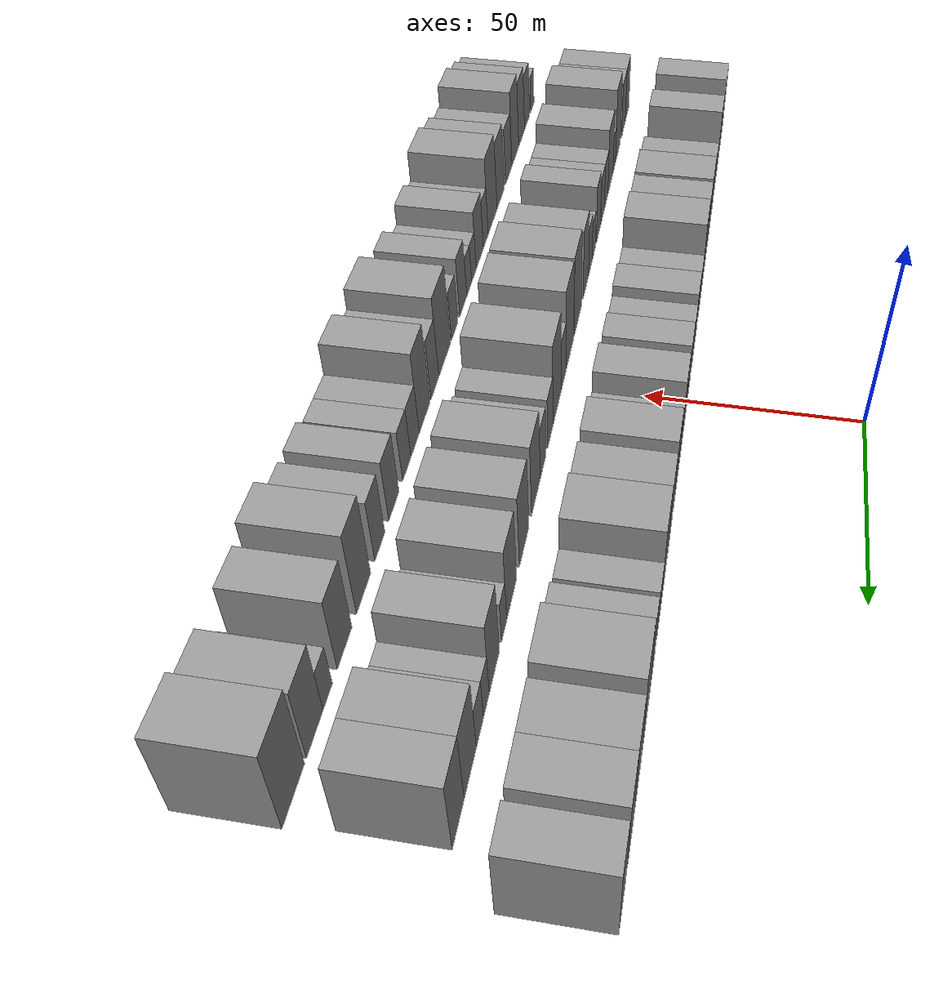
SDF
<sdf version="1.6">
 <world name="default">
  <model name="building_25">
   <static>1</static>
   <pose>50.0000 -112.3726 0 0.000000 0.000000 0.000000</pose>
   <link name="link">
    <pose>0 0 10.50 0 0 0</pose>
    <collision name="collision"><geometry><box><size>20.0000 9.3259 21.0000</size></box></geometry></collision>
    <visual name="visual">
     <cast_shadows>0</cast_shadows>
     <geometry><box><size>20.0000 9.3259 21.0000</size></box></geometry>
     <material>
      <script>
       <uri>model://grey_wall/materials/scripts</uri>
       <uri>model://grey_wall/materials/textures</uri>
       <name>vrc/grey_wall</name>
      </script>
     </material>
    </visual>
   </link>
  </model>
  <model name="building_26">
   <static>1</static>
   <pose>50.0000 -105.0843 0 0.000000 0.000000 0.000000</pose>
   <link name="link">
    <pose>0 0 6.00 0 0 0</pose>
    <collision name="collision"><geometry><box><size>20.0000 5.2507 12.0000</size></box></geometry></collision>
    <visual name="visual">
     <cast_shadows>0</cast_shadows>
     <geometry><box><size>20.0000 5.2507 12.0000</size></box></geometry>
     <material>
      <script>
       <uri>model://grey_wall/materials/scripts</uri>
       <uri>model://grey_wall/materials/textures</uri>
       <name>vrc/grey_wall</name>
      </script>
     </material>
    </visual>
   </link>
  </model>
  <model name="building_27">
   <static>1</static>
   <pose>50.0000 -95.0004 0 0.000000 0.000000 0.000000</pose>
   <link name="link">
    <pose>0 0 10.50 0 0 0</pose>
    <collision name="collision"><geometry><box><size>20.0000 8.9172 21.0000</size></box></geometry></collision>
    <visual name="visual">
     <cast_shadows>0</cast_shadows>
     <geometry><box><size>20.0000 8.9172 21.0000</size></box></geometry>
     <material>
      <script>
       <uri>model://grey_wall/materials/scripts</uri>
       <uri>model://grey_wall/materials/textures</uri>
       <name>vrc/grey_wall</name>
      </script>
     </material>
    </visual>
   </link>
  </model>
  <model name="building_28">
   <static>1</static>
   <pose>50.0000 -84.7550 0 0.000000 0.000000 0.000000</pose>
   <link name="link">
    <pose>0 0 6.00 0 0 0</pose>
    <collision name="collision"><geometry><box><size>20.0000 5.5736 12.0000</size></box></geometry></collision>
    <visual name="visual">
     <cast_shadows>0</cast_shadows>
     <geometry><box><size>20.0000 5.5736 12.0000</size></box></geometry>
     <material>
      <script>
       <uri>model://grey_wall/materials/scripts</uri>
       <uri>model://grey_wall/materials/textures</uri>
       <name>vrc/grey_wall</name>
      </script>
     </material>
    </visual>
   </link>
  </model>
  <model name="building_29">
   <static>1</static>
   <pose>50.0000 -76.0003 0 0.000000 0.000000 0.000000</pose>
   <link name="link">
    <pose>0 0 9.00 0 0 0</pose>
    <collision name="collision"><geometry><box><size>20.0000 7.9358 18.0000</size></box></geometry></collision>
    <visual name="visual">
     <cast_shadows>0</cast_shadows>
     <geometry><box><size>20.0000 7.9358 18.0000</size></box></geometry>
     <material>
      <script>
       <uri>model://grey_wall/materials/scripts</uri>
       <uri>model://grey_wall/materials/textures</uri>
       <name>vrc/grey_wall</name>
      </script>
     </material>
    </visual>
   </link>
  </model>
  <model name="building_30">
   <static>1</static>
   <pose>50.0000 -63.7899 0 0.000000 0.000000 0.000000</pose>
   <link name="link">
    <pose>0 0 10.50 0 0 0</pose>
    <collision name="collision"><geometry><box><size>20.0000 10.4850 21.0000</size></box></geometry></collision>
    <visual name="visual">
     <cast_shadows>0</cast_shadows>
     <geometry><box><size>20.0000 10.4850 21.0000</size></box></geometry>
     <material>
      <script>
       <uri>model://grey_wall/materials/scripts</uri>
       <uri>model://grey_wall/materials/textures</uri>
       <name>vrc/grey_wall</name>
      </script>
     </material>
    </visual>
   </link>
  </model>
  <model name="building_31">
   <static>1</static>
   <pose>50.0000 -53.2239 0 0.000000 0.000000 0.000000</pose>
   <link name="link">
    <pose>0 0 10.50 0 0 0</pose>
    <collision name="collision"><geometry><box><size>20.0000 8.6469 21.0000</size></box></geometry></collision>
    <visual name="visual">
     <cast_shadows>0</cast_shadows>
     <geometry><box><size>20.0000 8.6469 21.0000</size></box></geometry>
     <material>
      <script>
       <uri>model://grey_wall/materials/scripts</uri>
       <uri>model://grey_wall/materials/textures</uri>
       <name>vrc/grey_wall</name>
      </script>
     </material>
    </visual>
   </link>
  </model>
  <model name="building_32">
   <static>1</static>
   <pose>50.0000 -40.5641 0 0.000000 0.000000 0.000000</pose>
   <link name="link">
    <pose>0 0 12.00 0 0 0</pose>
    <collision name="collision"><geometry><box><size>20.0000 10.6726 24.0000</size></box></geometry></collision>
    <visual name="visual">
     <cast_shadows>0</cast_shadows>
     <geometry><box><size>20.0000 10.6726 24.0000</size></box></geometry>
     <material>
      <script>
       <uri>model://grey_wall/materials/scripts</uri>
       <uri>model://grey_wall/materials/textures</uri>
       <name>vrc/grey_wall</name>
      </script>
     </material>
    </visual>
   </link>
  </model>
  <model name="building_33">
   <static>1</static>
   <pose>50.0000 -31.6713 0 0.000000 0.000000 0.000000</pose>
   <link name="link">
    <pose>0 0 7.50 0 0 0</pose>
    <collision name="collision"><geometry><box><size>20.0000 7.1129 15.0000</size></box></geometry></collision>
    <visual name="visual">
     <cast_shadows>0</cast_shadows>
     <geometry><box><size>20.0000 7.1129 15.0000</size></box></geometry>
     <material>
      <script>
       <uri>model://grey_wall/materials/scripts</uri>
       <uri>model://grey_wall/materials/textures</uri>
       <name>vrc/grey_wall</name>
      </script>
     </material>
    </visual>
   </link>
  </model>
  <model name="building_34">
   <static>1</static>
   <pose>50.0000 -20.8521 0 0.000000 0.000000 0.000000</pose>
   <link name="link">
    <pose>0 0 9.00 0 0 0</pose>
    <collision name="collision"><geometry><box><size>20.0000 8.5255 18.0000</size></box></geometry></collision>
    <visual name="visual">
     <cast_shadows>0</cast_shadows>
     <geometry><box><size>20.0000 8.5255 18.0000</size></box></geometry>
     <material>
      <script>
       <uri>model://grey_wall/materials/scripts</uri>
       <uri>model://grey_wall/materials/textures</uri>
       <name>vrc/grey_wall</name>
      </script>
     </material>
    </visual>
   </link>
  </model>
  <model name="building_35">
   <static>1</static>
   <pose>50.0000 -13.3748 0 0.000000 0.000000 0.000000</pose>
   <link name="link">
    <pose>0 0 7.50 0 0 0</pose>
    <collision name="collision"><geometry><box><size>20.0000 6.4291 15.0000</size></box></geometry></collision>
    <visual name="visual">
     <cast_shadows>0</cast_shadows>
     <geometry><box><size>20.0000 6.4291 15.0000</size></box></geometry>
     <material>
      <script>
       <uri>model://grey_wall/materials/scripts</uri>
       <uri>model://grey_wall/materials/textures</uri>
       <name>vrc/grey_wall</name>
      </script>
     </material>
    </visual>
   </link>
  </model>
  <model name="building_36">
   <static>1</static>
   <pose>50.0000 -3.1231 0 0.000000 0.000000 0.000000</pose>
   <link name="link">
    <pose>0 0 9.00 0 0 0</pose>
    <collision name="collision"><geometry><box><size>20.0000 8.0743 18.0000</size></box></geometry></collision>
    <visual name="visual">
     <cast_shadows>0</cast_shadows>
     <geometry><box><size>20.0000 8.0743 18.0000</size></box></geometry>
     <material>
      <script>
       <uri>model://grey_wall/materials/scripts</uri>
       <uri>model://grey_wall/materials/textures</uri>
       <name>vrc/grey_wall</name>
      </script>
     </material>
    </visual>
   </link>
  </model>
  <model name="building_37">
   <static>1</static>
   <pose>50.0000 3.6202 0 0.000000 0.000000 0.000000</pose>
   <link name="link">
    <pose>0 0 6.00 0 0 0</pose>
    <collision name="collision"><geometry><box><size>20.0000 5.4123 12.0000</size></box></geometry></collision>
    <visual name="visual">
     <cast_shadows>0</cast_shadows>
     <geometry><box><size>20.0000 5.4123 12.0000</size></box></geometry>
     <material>
      <script>
       <uri>model://grey_wall/materials/scripts</uri>
       <uri>model://grey_wall/materials/textures</uri>
       <name>vrc/grey_wall</name>
      </script>
     </material>
    </visual>
   </link>
  </model>
  <model name="building_38">
   <static>1</static>
   <pose>50.0000 10.9065 0 0.000000 0.000000 0.000000</pose>
   <link name="link">
    <pose>0 0 10.50 0 0 0</pose>
    <collision name="collision"><geometry><box><size>20.0000 9.1602 21.0000</size></box></geometry></collision>
    <visual name="visual">
     <cast_shadows>0</cast_shadows>
     <geometry><box><size>20.0000 9.1602 21.0000</size></box></geometry>
     <material>
      <script>
       <uri>model://grey_wall/materials/scripts</uri>
       <uri>model://grey_wall/materials/textures</uri>
       <name>vrc/grey_wall</name>
      </script>
     </material>
    </visual>
   </link>
  </model>
  <model name="building_39">
   <static>1</static>
   <pose>50.0000 19.1723 0 0.000000 0.000000 0.000000</pose>
   <link name="link">
    <pose>0 0 7.50 0 0 0</pose>
    <collision name="collision"><geometry><box><size>20.0000 7.3716 15.0000</size></box></geometry></collision>
    <visual name="visual">
     <cast_shadows>0</cast_shadows>
     <geometry><box><size>20.0000 7.3716 15.0000</size></box></geometry>
     <material>
      <script>
       <uri>model://grey_wall/materials/scripts</uri>
       <uri>model://grey_wall/materials/textures</uri>
       <name>vrc/grey_wall</name>
      </script>
     </material>
    </visual>
   </link>
  </model>
  <model name="building_40">
   <static>1</static>
   <pose>50.0000 27.6833 0 0.000000 0.000000 0.000000</pose>
   <link name="link">
    <pose>0 0 10.50 0 0 0</pose>
    <collision name="collision"><geometry><box><size>20.0000 9.6505 21.0000</size></box></geometry></collision>
    <visual name="visual">
     <cast_shadows>0</cast_shadows>
     <geometry><box><size>20.0000 9.6505 21.0000</size></box></geometry>
     <material>
      <script>
       <uri>model://grey_wall/materials/scripts</uri>
       <uri>model://grey_wall/materials/textures</uri>
       <name>vrc/grey_wall</name>
      </script>
     </material>
    </visual>
   </link>
  </model>
  <model name="building_41">
   <static>1</static>
   <pose>50.0000 40.5229 0 0.000000 0.000000 0.000000</pose>
   <link name="link">
    <pose>0 0 10.50 0 0 0</pose>
    <collision name="collision"><geometry><box><size>20.0000 10.0286 21.0000</size></box></geometry></collision>
    <visual name="visual">
     <cast_shadows>0</cast_shadows>
     <geometry><box><size>20.0000 10.0286 21.0000</size></box></geometry>
     <material>
      <script>
       <uri>model://grey_wall/materials/scripts</uri>
       <uri>model://grey_wall/materials/textures</uri>
       <name>vrc/grey_wall</name>
      </script>
     </material>
    </visual>
   </link>
  </model>
  <model name="building_42">
   <static>1</static>
   <pose>50.0000 52.1175 0 0.000000 0.000000 0.000000</pose>
   <link name="link">
    <pose>0 0 12.00 0 0 0</pose>
    <collision name="collision"><geometry><box><size>20.0000 11.1605 24.0000</size></box></geometry></collision>
    <visual name="visual">
     <cast_shadows>0</cast_shadows>
     <geometry><box><size>20.0000 11.1605 24.0000</size></box></geometry>
     <material>
      <script>
       <uri>model://grey_wall/materials/scripts</uri>
       <uri>model://grey_wall/materials/textures</uri>
       <name>vrc/grey_wall</name>
      </script>
     </material>
    </visual>
   </link>
  </model>
  <model name="building_43">
   <static>1</static>
   <pose>50.0000 61.1366 0 0.000000 0.000000 0.000000</pose>
   <link name="link">
    <pose>0 0 7.50 0 0 0</pose>
    <collision name="collision"><geometry><box><size>20.0000 6.8779 15.0000</size></box></geometry></collision>
    <visual name="visual">
     <cast_shadows>0</cast_shadows>
     <geometry><box><size>20.0000 6.8779 15.0000</size></box></geometry>
     <material>
      <script>
       <uri>model://grey_wall/materials/scripts</uri>
       <uri>model://grey_wall/materials/textures</uri>
       <name>vrc/grey_wall</name>
      </script>
     </material>
    </visual>
   </link>
  </model>
  <model name="building_44">
   <static>1</static>
   <pose>50.0000 71.9413 0 0.000000 0.000000 0.000000</pose>
   <link name="link">
    <pose>0 0 9.00 0 0 0</pose>
    <collision name="collision"><geometry><box><size>20.0000 8.7314 18.0000</size></box></geometry></collision>
    <visual name="visual">
     <cast_shadows>0</cast_shadows>
     <geometry><box><size>20.0000 8.7314 18.0000</size></box></geometry>
     <material>
      <script>
       <uri>model://grey_wall/materials/scripts</uri>
       <uri>model://grey_wall/materials/textures</uri>
       <name>vrc/grey_wall</name>
      </script>
     </material>
    </visual>
   </link>
  </model>
  <model name="building_45">
   <static>1</static>
   <pose>50.0000 82.3066 0 0.000000 0.000000 0.000000</pose>
   <link name="link">
    <pose>0 0 12.00 0 0 0</pose>
    <collision name="collision"><geometry><box><size>20.0000 11.9993 24.0000</size></box></geometry></collision>
    <visual name="visual">
     <cast_shadows>0</cast_shadows>
     <geometry><box><size>20.0000 11.9993 24.0000</size></box></geometry>
     <material>
      <script>
       <uri>model://grey_wall/materials/scripts</uri>
       <uri>model://grey_wall/materials/textures</uri>
       <name>vrc/grey_wall</name>
      </script>
     </material>
    </visual>
   </link>
  </model>
  <model name="building_46">
   <static>1</static>
   <pose>50.0000 94.3098 0 0.000000 0.000000 0.000000</pose>
   <link name="link">
    <pose>0 0 10.50 0 0 0</pose>
    <collision name="collision"><geometry><box><size>20.0000 10.0070 21.0000</size></box></geometry></collision>
    <visual name="visual">
     <cast_shadows>0</cast_shadows>
     <geometry><box><size>20.0000 10.0070 21.0000</size></box></geometry>
     <material>
      <script>
       <uri>model://grey_wall/materials/scripts</uri>
       <uri>model://grey_wall/materials/textures</uri>
       <name>vrc/grey_wall</name>
      </script>
     </material>
    </visual>
   </link>
  </model>
  <model name="building_47">
   <static>1</static>
   <pose>50.0000 104.0893 0 0.000000 0.000000 0.000000</pose>
   <link name="link">
    <pose>0 0 10.50 0 0 0</pose>
    <collision name="collision"><geometry><box><size>20.0000 9.5521 21.0000</size></box></geometry></collision>
    <visual name="visual">
     <cast_shadows>0</cast_shadows>
     <geometry><box><size>20.0000 9.5521 21.0000</size></box></geometry>
     <material>
      <script>
       <uri>model://grey_wall/materials/scripts</uri>
       <uri>model://grey_wall/materials/textures</uri>
       <name>vrc/grey_wall</name>
      </script>
     </material>
    </visual>
   </link>
  </model>
  <model name="building_48">
   <static>1</static>
   <pose>50.0000 115.2018 0 0.000000 0.000000 0.000000</pose>
   <link name="link">
    <pose>0 0 10.50 0 0 0</pose>
    <collision name="collision"><geometry><box><size>20.0000 8.6728 21.0000</size></box></geometry></collision>
    <visual name="visual">
     <cast_shadows>0</cast_shadows>
     <geometry><box><size>20.0000 8.6728 21.0000</size></box></geometry>
     <material>
      <script>
       <uri>model://grey_wall/materials/scripts</uri>
       <uri>model://grey_wall/materials/textures</uri>
       <name>vrc/grey_wall</name>
      </script>
     </material>
    </visual>
   </link>
  </model>
  <model name="building_99">
   <static>1</static>
   <pose>79.0000 -118.6363 0 0.000000 0.000000 0.000000</pose>
   <link name="link">
    <pose>0 0 9.00 0 0 0</pose>
    <collision name="collision"><geometry><box><size>20.0000 8.7768 18.0000</size></box></geometry></collision>
    <visual name="visual">
     <cast_shadows>0</cast_shadows>
     <geometry><box><size>20.0000 8.7768 18.0000</size></box></geometry>
     <material>
      <script>
       <uri>model://grey_wall/materials/scripts</uri>
       <uri>model://grey_wall/materials/textures</uri>
       <name>vrc/grey_wall</name>
      </script>
     </material>
    </visual>
   </link>
  </model>
  <model name="building_100">
   <static>1</static>
   <pose>79.0000 -109.9008 0 0.000000 0.000000 0.000000</pose>
   <link name="link">
    <pose>0 0 9.00 0 0 0</pose>
    <collision name="collision"><geometry><box><size>20.0000 8.6943 18.0000</size></box></geometry></collision>
    <visual name="visual">
     <cast_shadows>0</cast_shadows>
     <geometry><box><size>20.0000 8.6943 18.0000</size></box></geometry>
     <material>
      <script>
       <uri>model://grey_wall/materials/scripts</uri>
       <uri>model://grey_wall/materials/textures</uri>
       <name>vrc/grey_wall</name>
      </script>
     </material>
    </visual>
   </link>
  </model>
  <model name="building_101">
   <static>1</static>
   <pose>79.0000 -97.3235 0 0.000000 0.000000 0.000000</pose>
   <link name="link">
    <pose>0 0 12.00 0 0 0</pose>
    <collision name="collision"><geometry><box><size>20.0000 10.4603 24.0000</size></box></geometry></collision>
    <visual name="visual">
     <cast_shadows>0</cast_shadows>
     <geometry><box><size>20.0000 10.4603 24.0000</size></box></geometry>
     <material>
      <script>
       <uri>model://grey_wall/materials/scripts</uri>
       <uri>model://grey_wall/materials/textures</uri>
       <name>vrc/grey_wall</name>
      </script>
     </material>
    </visual>
   </link>
  </model>
  <model name="building_102">
   <static>1</static>
   <pose>79.0000 -89.5181 0 0.000000 0.000000 0.000000</pose>
   <link name="link">
    <pose>0 0 6.00 0 0 0</pose>
    <collision name="collision"><geometry><box><size>20.0000 5.1506 12.0000</size></box></geometry></collision>
    <visual name="visual">
     <cast_shadows>0</cast_shadows>
     <geometry><box><size>20.0000 5.1506 12.0000</size></box></geometry>
     <material>
      <script>
       <uri>model://grey_wall/materials/scripts</uri>
       <uri>model://grey_wall/materials/textures</uri>
       <name>vrc/grey_wall</name>
      </script>
     </material>
    </visual>
   </link>
  </model>
  <model name="building_103">
   <static>1</static>
   <pose>79.0000 -81.7245 0 0.000000 0.000000 0.000000</pose>
   <link name="link">
    <pose>0 0 10.50 0 0 0</pose>
    <collision name="collision"><geometry><box><size>20.0000 10.4366 21.0000</size></box></geometry></collision>
    <visual name="visual">
     <cast_shadows>0</cast_shadows>
     <geometry><box><size>20.0000 10.4366 21.0000</size></box></geometry>
     <material>
      <script>
       <uri>model://grey_wall/materials/scripts</uri>
       <uri>model://grey_wall/materials/textures</uri>
       <name>vrc/grey_wall</name>
      </script>
     </material>
    </visual>
   </link>
  </model>
  <model name="building_104">
   <static>1</static>
   <pose>79.0000 -73.0098 0 0.000000 0.000000 0.000000</pose>
   <link name="link">
    <pose>0 0 7.50 0 0 0</pose>
    <collision name="collision"><geometry><box><size>20.0000 6.9927 15.0000</size></box></geometry></collision>
    <visual name="visual">
     <cast_shadows>0</cast_shadows>
     <geometry><box><size>20.0000 6.9927 15.0000</size></box></geometry>
     <material>
      <script>
       <uri>model://grey_wall/materials/scripts</uri>
       <uri>model://grey_wall/materials/textures</uri>
       <name>vrc/grey_wall</name>
      </script>
     </material>
    </visual>
   </link>
  </model>
  <model name="building_105">
   <static>1</static>
   <pose>79.0000 -66.1398 0 0.000000 0.000000 0.000000</pose>
   <link name="link">
    <pose>0 0 7.50 0 0 0</pose>
    <collision name="collision"><geometry><box><size>20.0000 6.7475 15.0000</size></box></geometry></collision>
    <visual name="visual">
     <cast_shadows>0</cast_shadows>
     <geometry><box><size>20.0000 6.7475 15.0000</size></box></geometry>
     <material>
      <script>
       <uri>model://grey_wall/materials/scripts</uri>
       <uri>model://grey_wall/materials/textures</uri>
       <name>vrc/grey_wall</name>
      </script>
     </material>
    </visual>
   </link>
  </model>
  <model name="building_106">
   <static>1</static>
   <pose>79.0000 -58.1463 0 0.000000 0.000000 0.000000</pose>
   <link name="link">
    <pose>0 0 9.00 0 0 0</pose>
    <collision name="collision"><geometry><box><size>20.0000 7.2394 18.0000</size></box></geometry></collision>
    <visual name="visual">
     <cast_shadows>0</cast_shadows>
     <geometry><box><size>20.0000 7.2394 18.0000</size></box></geometry>
     <material>
      <script>
       <uri>model://grey_wall/materials/scripts</uri>
       <uri>model://grey_wall/materials/textures</uri>
       <name>vrc/grey_wall</name>
      </script>
     </material>
    </visual>
   </link>
  </model>
  <model name="building_107">
   <static>1</static>
   <pose>79.0000 -49.7408 0 0.000000 0.000000 0.000000</pose>
   <link name="link">
    <pose>0 0 6.00 0 0 0</pose>
    <collision name="collision"><geometry><box><size>20.0000 5.5715 12.0000</size></box></geometry></collision>
    <visual name="visual">
     <cast_shadows>0</cast_shadows>
     <geometry><box><size>20.0000 5.5715 12.0000</size></box></geometry>
     <material>
      <script>
       <uri>model://grey_wall/materials/scripts</uri>
       <uri>model://grey_wall/materials/textures</uri>
       <name>vrc/grey_wall</name>
      </script>
     </material>
    </visual>
   </link>
  </model>
  <model name="building_108">
   <static>1</static>
   <pose>79.0000 -43.7223 0 0.000000 0.000000 0.000000</pose>
   <link name="link">
    <pose>0 0 7.50 0 0 0</pose>
    <collision name="collision"><geometry><box><size>20.0000 6.4656 15.0000</size></box></geometry></collision>
    <visual name="visual">
     <cast_shadows>0</cast_shadows>
     <geometry><box><size>20.0000 6.4656 15.0000</size></box></geometry>
     <material>
      <script>
       <uri>model://grey_wall/materials/scripts</uri>
       <uri>model://grey_wall/materials/textures</uri>
       <name>vrc/grey_wall</name>
      </script>
     </material>
    </visual>
   </link>
  </model>
  <model name="building_109">
   <static>1</static>
   <pose>79.0000 -36.0960 0 0.000000 0.000000 0.000000</pose>
   <link name="link">
    <pose>0 0 10.50 0 0 0</pose>
    <collision name="collision"><geometry><box><size>20.0000 8.7871 21.0000</size></box></geometry></collision>
    <visual name="visual">
     <cast_shadows>0</cast_shadows>
     <geometry><box><size>20.0000 8.7871 21.0000</size></box></geometry>
     <material>
      <script>
       <uri>model://grey_wall/materials/scripts</uri>
       <uri>model://grey_wall/materials/textures</uri>
       <name>vrc/grey_wall</name>
      </script>
     </material>
    </visual>
   </link>
  </model>
  <model name="building_110">
   <static>1</static>
   <pose>79.0000 -23.1301 0 0.000000 0.000000 0.000000</pose>
   <link name="link">
    <pose>0 0 12.00 0 0 0</pose>
    <collision name="collision"><geometry><box><size>20.0000 11.1446 24.0000</size></box></geometry></collision>
    <visual name="visual">
     <cast_shadows>0</cast_shadows>
     <geometry><box><size>20.0000 11.1446 24.0000</size></box></geometry>
     <material>
      <script>
       <uri>model://grey_wall/materials/scripts</uri>
       <uri>model://grey_wall/materials/textures</uri>
       <name>vrc/grey_wall</name>
      </script>
     </material>
    </visual>
   </link>
  </model>
  <model name="building_111">
   <static>1</static>
   <pose>79.0000 -11.0410 0 0.000000 0.000000 0.000000</pose>
   <link name="link">
    <pose>0 0 12.00 0 0 0</pose>
    <collision name="collision"><geometry><box><size>20.0000 11.0335 24.0000</size></box></geometry></collision>
    <visual name="visual">
     <cast_shadows>0</cast_shadows>
     <geometry><box><size>20.0000 11.0335 24.0000</size></box></geometry>
     <material>
      <script>
       <uri>model://grey_wall/materials/scripts</uri>
       <uri>model://grey_wall/materials/textures</uri>
       <name>vrc/grey_wall</name>
      </script>
     </material>
    </visual>
   </link>
  </model>
  <model name="building_112">
   <static>1</static>
   <pose>79.0000 -2.1463 0 0.000000 0.000000 0.000000</pose>
   <link name="link">
    <pose>0 0 7.50 0 0 0</pose>
    <collision name="collision"><geometry><box><size>20.0000 6.7559 15.0000</size></box></geometry></collision>
    <visual name="visual">
     <cast_shadows>0</cast_shadows>
     <geometry><box><size>20.0000 6.7559 15.0000</size></box></geometry>
     <material>
      <script>
       <uri>model://grey_wall/materials/scripts</uri>
       <uri>model://grey_wall/materials/textures</uri>
       <name>vrc/grey_wall</name>
      </script>
     </material>
    </visual>
   </link>
  </model>
  <model name="building_113">
   <static>1</static>
   <pose>79.0000 6.8557 0 0.000000 0.000000 0.000000</pose>
   <link name="link">
    <pose>0 0 12.00 0 0 0</pose>
    <collision name="collision"><geometry><box><size>20.0000 11.2482 24.0000</size></box></geometry></collision>
    <visual name="visual">
     <cast_shadows>0</cast_shadows>
     <geometry><box><size>20.0000 11.2482 24.0000</size></box></geometry>
     <material>
      <script>
       <uri>model://grey_wall/materials/scripts</uri>
       <uri>model://grey_wall/materials/textures</uri>
       <name>vrc/grey_wall</name>
      </script>
     </material>
    </visual>
   </link>
  </model>
  <model name="building_114">
   <static>1</static>
   <pose>79.0000 16.0482 0 0.000000 0.000000 0.000000</pose>
   <link name="link">
    <pose>0 0 7.50 0 0 0</pose>
    <collision name="collision"><geometry><box><size>20.0000 7.1368 15.0000</size></box></geometry></collision>
    <visual name="visual">
     <cast_shadows>0</cast_shadows>
     <geometry><box><size>20.0000 7.1368 15.0000</size></box></geometry>
     <material>
      <script>
       <uri>model://grey_wall/materials/scripts</uri>
       <uri>model://grey_wall/materials/textures</uri>
       <name>vrc/grey_wall</name>
      </script>
     </material>
    </visual>
   </link>
  </model>
  <model name="building_115">
   <static>1</static>
   <pose>79.0000 25.1755 0 0.000000 0.000000 0.000000</pose>
   <link name="link">
    <pose>0 0 7.50 0 0 0</pose>
    <collision name="collision"><geometry><box><size>20.0000 7.1177 15.0000</size></box></geometry></collision>
    <visual name="visual">
     <cast_shadows>0</cast_shadows>
     <geometry><box><size>20.0000 7.1177 15.0000</size></box></geometry>
     <material>
      <script>
       <uri>model://grey_wall/materials/scripts</uri>
       <uri>model://grey_wall/materials/textures</uri>
       <name>vrc/grey_wall</name>
      </script>
     </material>
    </visual>
   </link>
  </model>
  <model name="building_116">
   <static>1</static>
   <pose>79.0000 33.8125 0 0.000000 0.000000 0.000000</pose>
   <link name="link">
    <pose>0 0 10.50 0 0 0</pose>
    <collision name="collision"><geometry><box><size>20.0000 10.1564 21.0000</size></box></geometry></collision>
    <visual name="visual">
     <cast_shadows>0</cast_shadows>
     <geometry><box><size>20.0000 10.1564 21.0000</size></box></geometry>
     <material>
      <script>
       <uri>model://grey_wall/materials/scripts</uri>
       <uri>model://grey_wall/materials/textures</uri>
       <name>vrc/grey_wall</name>
      </script>
     </material>
    </visual>
   </link>
  </model>
  <model name="building_117">
   <static>1</static>
   <pose>79.0000 47.0017 0 0.000000 0.000000 0.000000</pose>
   <link name="link">
    <pose>0 0 10.50 0 0 0</pose>
    <collision name="collision"><geometry><box><size>20.0000 10.2220 21.0000</size></box></geometry></collision>
    <visual name="visual">
     <cast_shadows>0</cast_shadows>
     <geometry><box><size>20.0000 10.2220 21.0000</size></box></geometry>
     <material>
      <script>
       <uri>model://grey_wall/materials/scripts</uri>
       <uri>model://grey_wall/materials/textures</uri>
       <name>vrc/grey_wall</name>
      </script>
     </material>
    </visual>
   </link>
  </model>
  <model name="building_118">
   <static>1</static>
   <pose>79.0000 60.0276 0 0.000000 0.000000 0.000000</pose>
   <link name="link">
    <pose>0 0 10.50 0 0 0</pose>
    <collision name="collision"><geometry><box><size>20.0000 9.8298 21.0000</size></box></geometry></collision>
    <visual name="visual">
     <cast_shadows>0</cast_shadows>
     <geometry><box><size>20.0000 9.8298 21.0000</size></box></geometry>
     <material>
      <script>
       <uri>model://grey_wall/materials/scripts</uri>
       <uri>model://grey_wall/materials/textures</uri>
       <name>vrc/grey_wall</name>
      </script>
     </material>
    </visual>
   </link>
  </model>
  <model name="building_119">
   <static>1</static>
   <pose>79.0000 67.4503 0 0.000000 0.000000 0.000000</pose>
   <link name="link">
    <pose>0 0 6.00 0 0 0</pose>
    <collision name="collision"><geometry><box><size>20.0000 5.0156 12.0000</size></box></geometry></collision>
    <visual name="visual">
     <cast_shadows>0</cast_shadows>
     <geometry><box><size>20.0000 5.0156 12.0000</size></box></geometry>
     <material>
      <script>
       <uri>model://grey_wall/materials/scripts</uri>
       <uri>model://grey_wall/materials/textures</uri>
       <name>vrc/grey_wall</name>
      </script>
     </material>
    </visual>
   </link>
  </model>
  <model name="building_120">
   <static>1</static>
   <pose>79.0000 76.5302 0 0.000000 0.000000 0.000000</pose>
   <link name="link">
    <pose>0 0 10.50 0 0 0</pose>
    <collision name="collision"><geometry><box><size>20.0000 9.1442 21.0000</size></box></geometry></collision>
    <visual name="visual">
     <cast_shadows>0</cast_shadows>
     <geometry><box><size>20.0000 9.1442 21.0000</size></box></geometry>
     <material>
      <script>
       <uri>model://grey_wall/materials/scripts</uri>
       <uri>model://grey_wall/materials/textures</uri>
       <name>vrc/grey_wall</name>
      </script>
     </material>
    </visual>
   </link>
  </model>
  <model name="building_121">
   <static>1</static>
   <pose>79.0000 83.5909 0 0.000000 0.000000 0.000000</pose>
   <link name="link">
    <pose>0 0 6.00 0 0 0</pose>
    <collision name="collision"><geometry><box><size>20.0000 4.9772 12.0000</size></box></geometry></collision>
    <visual name="visual">
     <cast_shadows>0</cast_shadows>
     <geometry><box><size>20.0000 4.9772 12.0000</size></box></geometry>
     <material>
      <script>
       <uri>model://grey_wall/materials/scripts</uri>
       <uri>model://grey_wall/materials/textures</uri>
       <name>vrc/grey_wall</name>
      </script>
     </material>
    </visual>
   </link>
  </model>
  <model name="building_122">
   <static>1</static>
   <pose>79.0000 89.0601 0 0.000000 0.000000 0.000000</pose>
   <link name="link">
    <pose>0 0 6.00 0 0 0</pose>
    <collision name="collision"><geometry><box><size>20.0000 5.9613 12.0000</size></box></geometry></collision>
    <visual name="visual">
     <cast_shadows>0</cast_shadows>
     <geometry><box><size>20.0000 5.9613 12.0000</size></box></geometry>
     <material>
      <script>
       <uri>model://grey_wall/materials/scripts</uri>
       <uri>model://grey_wall/materials/textures</uri>
       <name>vrc/grey_wall</name>
      </script>
     </material>
    </visual>
   </link>
  </model>
  <model name="building_123">
   <static>1</static>
   <pose>79.0000 96.8307 0 0.000000 0.000000 0.000000</pose>
   <link name="link">
    <pose>0 0 10.50 0 0 0</pose>
    <collision name="collision"><geometry><box><size>20.0000 9.5799 21.0000</size></box></geometry></collision>
    <visual name="visual">
     <cast_shadows>0</cast_shadows>
     <geometry><box><size>20.0000 9.5799 21.0000</size></box></geometry>
     <material>
      <script>
       <uri>model://grey_wall/materials/scripts</uri>
       <uri>model://grey_wall/materials/textures</uri>
       <name>vrc/grey_wall</name>
      </script>
     </material>
    </visual>
   </link>
  </model>
  <model name="building_124">
   <static>1</static>
   <pose>79.0000 106.0842 0 0.000000 0.000000 0.000000</pose>
   <link name="link">
    <pose>0 0 10.50 0 0 0</pose>
    <collision name="collision"><geometry><box><size>20.0000 8.9272 21.0000</size></box></geometry></collision>
    <visual name="visual">
     <cast_shadows>0</cast_shadows>
     <geometry><box><size>20.0000 8.9272 21.0000</size></box></geometry>
     <material>
      <script>
       <uri>model://grey_wall/materials/scripts</uri>
       <uri>model://grey_wall/materials/textures</uri>
       <name>vrc/grey_wall</name>
      </script>
     </material>
    </visual>
   </link>
  </model>
  <model name="building_176">
   <static>1</static>
   <pose>108.0000 -117.8788 0 0.000000 0.000000 0.000000</pose>
   <link name="link">
    <pose>0 0 6.00 0 0 0</pose>
    <collision name="collision"><geometry><box><size>20.0000 5.5492 12.0000</size></box></geometry></collision>
    <visual name="visual">
     <cast_shadows>0</cast_shadows>
     <geometry><box><size>20.0000 5.5492 12.0000</size></box></geometry>
     <material>
      <script>
       <uri>model://grey_wall/materials/scripts</uri>
       <uri>model://grey_wall/materials/textures</uri>
       <name>vrc/grey_wall</name>
      </script>
     </material>
    </visual>
   </link>
  </model>
  <model name="building_177">
   <static>1</static>
   <pose>108.0000 -109.0860 0 0.000000 0.000000 0.000000</pose>
   <link name="link">
    <pose>0 0 9.00 0 0 0</pose>
    <collision name="collision"><geometry><box><size>20.0000 8.0364 18.0000</size></box></geometry></collision>
    <visual name="visual">
     <cast_shadows>0</cast_shadows>
     <geometry><box><size>20.0000 8.0364 18.0000</size></box></geometry>
     <material>
      <script>
       <uri>model://grey_wall/materials/scripts</uri>
       <uri>model://grey_wall/materials/textures</uri>
       <name>vrc/grey_wall</name>
      </script>
     </material>
    </visual>
   </link>
  </model>
  <model name="building_178">
   <static>1</static>
   <pose>108.0000 -100.5603 0 0.000000 0.000000 0.000000</pose>
   <link name="link">
    <pose>0 0 10.50 0 0 0</pose>
    <collision name="collision"><geometry><box><size>20.0000 9.0152 21.0000</size></box></geometry></collision>
    <visual name="visual">
     <cast_shadows>0</cast_shadows>
     <geometry><box><size>20.0000 9.0152 21.0000</size></box></geometry>
     <material>
      <script>
       <uri>model://grey_wall/materials/scripts</uri>
       <uri>model://grey_wall/materials/textures</uri>
       <name>vrc/grey_wall</name>
      </script>
     </material>
    </visual>
   </link>
  </model>
  <model name="building_179">
   <static>1</static>
   <pose>108.0000 -91.0299 0 0.000000 0.000000 0.000000</pose>
   <link name="link">
    <pose>0 0 12.00 0 0 0</pose>
    <collision name="collision"><geometry><box><size>20.0000 10.0457 24.0000</size></box></geometry></collision>
    <visual name="visual">
     <cast_shadows>0</cast_shadows>
     <geometry><box><size>20.0000 10.0457 24.0000</size></box></geometry>
     <material>
      <script>
       <uri>model://grey_wall/materials/scripts</uri>
       <uri>model://grey_wall/materials/textures</uri>
       <name>vrc/grey_wall</name>
      </script>
     </material>
    </visual>
   </link>
  </model>
  <model name="building_180">
   <static>1</static>
   <pose>108.0000 -80.9696 0 0.000000 0.000000 0.000000</pose>
   <link name="link">
    <pose>0 0 9.00 0 0 0</pose>
    <collision name="collision"><geometry><box><size>20.0000 8.0749 18.0000</size></box></geometry></collision>
    <visual name="visual">
     <cast_shadows>0</cast_shadows>
     <geometry><box><size>20.0000 8.0749 18.0000</size></box></geometry>
     <material>
      <script>
       <uri>model://grey_wall/materials/scripts</uri>
       <uri>model://grey_wall/materials/textures</uri>
       <name>vrc/grey_wall</name>
      </script>
     </material>
    </visual>
   </link>
  </model>
  <model name="building_181">
   <static>1</static>
   <pose>108.0000 -70.0356 0 0.000000 0.000000 0.000000</pose>
   <link name="link">
    <pose>0 0 10.50 0 0 0</pose>
    <collision name="collision"><geometry><box><size>20.0000 9.7931 21.0000</size></box></geometry></collision>
    <visual name="visual">
     <cast_shadows>0</cast_shadows>
     <geometry><box><size>20.0000 9.7931 21.0000</size></box></geometry>
     <material>
      <script>
       <uri>model://grey_wall/materials/scripts</uri>
       <uri>model://grey_wall/materials/textures</uri>
       <name>vrc/grey_wall</name>
      </script>
     </material>
    </visual>
   </link>
  </model>
  <model name="building_182">
   <static>1</static>
   <pose>108.0000 -59.3357 0 0.000000 0.000000 0.000000</pose>
   <link name="link">
    <pose>0 0 12.00 0 0 0</pose>
    <collision name="collision"><geometry><box><size>20.0000 11.6067 24.0000</size></box></geometry></collision>
    <visual name="visual">
     <cast_shadows>0</cast_shadows>
     <geometry><box><size>20.0000 11.6067 24.0000</size></box></geometry>
     <material>
      <script>
       <uri>model://grey_wall/materials/scripts</uri>
       <uri>model://grey_wall/materials/textures</uri>
       <name>vrc/grey_wall</name>
      </script>
     </material>
    </visual>
   </link>
  </model>
  <model name="building_183">
   <static>1</static>
   <pose>108.0000 -50.4941 0 0.000000 0.000000 0.000000</pose>
   <link name="link">
    <pose>0 0 7.50 0 0 0</pose>
    <collision name="collision"><geometry><box><size>20.0000 6.0766 15.0000</size></box></geometry></collision>
    <visual name="visual">
     <cast_shadows>0</cast_shadows>
     <geometry><box><size>20.0000 6.0766 15.0000</size></box></geometry>
     <material>
      <script>
       <uri>model://grey_wall/materials/scripts</uri>
       <uri>model://grey_wall/materials/textures</uri>
       <name>vrc/grey_wall</name>
      </script>
     </material>
    </visual>
   </link>
  </model>
  <model name="building_184">
   <static>1</static>
   <pose>108.0000 -43.0907 0 0.000000 0.000000 0.000000</pose>
   <link name="link">
    <pose>0 0 9.00 0 0 0</pose>
    <collision name="collision"><geometry><box><size>20.0000 8.7302 18.0000</size></box></geometry></collision>
    <visual name="visual">
     <cast_shadows>0</cast_shadows>
     <geometry><box><size>20.0000 8.7302 18.0000</size></box></geometry>
     <material>
      <script>
       <uri>model://grey_wall/materials/scripts</uri>
       <uri>model://grey_wall/materials/textures</uri>
       <name>vrc/grey_wall</name>
      </script>
     </material>
    </visual>
   </link>
  </model>
  <model name="building_185">
   <static>1</static>
   <pose>108.0000 -36.0420 0 0.000000 0.000000 0.000000</pose>
   <link name="link">
    <pose>0 0 6.00 0 0 0</pose>
    <collision name="collision"><geometry><box><size>20.0000 5.3672 12.0000</size></box></geometry></collision>
    <visual name="visual">
     <cast_shadows>0</cast_shadows>
     <geometry><box><size>20.0000 5.3672 12.0000</size></box></geometry>
     <material>
      <script>
       <uri>model://grey_wall/materials/scripts</uri>
       <uri>model://grey_wall/materials/textures</uri>
       <name>vrc/grey_wall</name>
      </script>
     </material>
    </visual>
   </link>
  </model>
  <model name="building_186">
   <static>1</static>
   <pose>108.0000 -30.5812 0 0.000000 0.000000 0.000000</pose>
   <link name="link">
    <pose>0 0 6.00 0 0 0</pose>
    <collision name="collision"><geometry><box><size>20.0000 5.5544 12.0000</size></box></geometry></collision>
    <visual name="visual">
     <cast_shadows>0</cast_shadows>
     <geometry><box><size>20.0000 5.5544 12.0000</size></box></geometry>
     <material>
      <script>
       <uri>model://grey_wall/materials/scripts</uri>
       <uri>model://grey_wall/materials/textures</uri>
       <name>vrc/grey_wall</name>
      </script>
     </material>
    </visual>
   </link>
  </model>
  <model name="building_187">
   <static>1</static>
   <pose>108.0000 -23.9110 0 0.000000 0.000000 0.000000</pose>
   <link name="link">
    <pose>0 0 9.00 0 0 0</pose>
    <collision name="collision"><geometry><box><size>20.0000 7.7859 18.0000</size></box></geometry></collision>
    <visual name="visual">
     <cast_shadows>0</cast_shadows>
     <geometry><box><size>20.0000 7.7859 18.0000</size></box></geometry>
     <material>
      <script>
       <uri>model://grey_wall/materials/scripts</uri>
       <uri>model://grey_wall/materials/textures</uri>
       <name>vrc/grey_wall</name>
      </script>
     </material>
    </visual>
   </link>
  </model>
  <model name="building_188">
   <static>1</static>
   <pose>108.0000 -14.6415 0 0.000000 0.000000 0.000000</pose>
   <link name="link">
    <pose>0 0 7.50 0 0 0</pose>
    <collision name="collision"><geometry><box><size>20.0000 6.7532 15.0000</size></box></geometry></collision>
    <visual name="visual">
     <cast_shadows>0</cast_shadows>
     <geometry><box><size>20.0000 6.7532 15.0000</size></box></geometry>
     <material>
      <script>
       <uri>model://grey_wall/materials/scripts</uri>
       <uri>model://grey_wall/materials/textures</uri>
       <name>vrc/grey_wall</name>
      </script>
     </material>
    </visual>
   </link>
  </model>
  <model name="building_189">
   <static>1</static>
   <pose>108.0000 -4.3661 0 0.000000 0.000000 0.000000</pose>
   <link name="link">
    <pose>0 0 12.00 0 0 0</pose>
    <collision name="collision"><geometry><box><size>20.0000 11.7976 24.0000</size></box></geometry></collision>
    <visual name="visual">
     <cast_shadows>0</cast_shadows>
     <geometry><box><size>20.0000 11.7976 24.0000</size></box></geometry>
     <material>
      <script>
       <uri>model://grey_wall/materials/scripts</uri>
       <uri>model://grey_wall/materials/textures</uri>
       <name>vrc/grey_wall</name>
      </script>
     </material>
    </visual>
   </link>
  </model>
  <model name="building_190">
   <static>1</static>
   <pose>108.0000 5.3057 0 0.000000 0.000000 0.000000</pose>
   <link name="link">
    <pose>0 0 9.00 0 0 0</pose>
    <collision name="collision"><geometry><box><size>20.0000 7.5459 18.0000</size></box></geometry></collision>
    <visual name="visual">
     <cast_shadows>0</cast_shadows>
     <geometry><box><size>20.0000 7.5459 18.0000</size></box></geometry>
     <material>
      <script>
       <uri>model://grey_wall/materials/scripts</uri>
       <uri>model://grey_wall/materials/textures</uri>
       <name>vrc/grey_wall</name>
      </script>
     </material>
    </visual>
   </link>
  </model>
  <model name="building_191">
   <static>1</static>
   <pose>108.0000 14.9046 0 0.000000 0.000000 0.000000</pose>
   <link name="link">
    <pose>0 0 12.00 0 0 0</pose>
    <collision name="collision"><geometry><box><size>20.0000 9.6519 24.0000</size></box></geometry></collision>
    <visual name="visual">
     <cast_shadows>0</cast_shadows>
     <geometry><box><size>20.0000 9.6519 24.0000</size></box></geometry>
     <material>
      <script>
       <uri>model://grey_wall/materials/scripts</uri>
       <uri>model://grey_wall/materials/textures</uri>
       <name>vrc/grey_wall</name>
      </script>
     </material>
    </visual>
   </link>
  </model>
  <model name="building_192">
   <static>1</static>
   <pose>108.0000 23.3704 0 0.000000 0.000000 0.000000</pose>
   <link name="link">
    <pose>0 0 7.50 0 0 0</pose>
    <collision name="collision"><geometry><box><size>20.0000 7.2797 15.0000</size></box></geometry></collision>
    <visual name="visual">
     <cast_shadows>0</cast_shadows>
     <geometry><box><size>20.0000 7.2797 15.0000</size></box></geometry>
     <material>
      <script>
       <uri>model://grey_wall/materials/scripts</uri>
       <uri>model://grey_wall/materials/textures</uri>
       <name>vrc/grey_wall</name>
      </script>
     </material>
    </visual>
   </link>
  </model>
  <model name="building_193">
   <static>1</static>
   <pose>108.0000 30.5075 0 0.000000 0.000000 0.000000</pose>
   <link name="link">
    <pose>0 0 7.50 0 0 0</pose>
    <collision name="collision"><geometry><box><size>20.0000 6.9945 15.0000</size></box></geometry></collision>
    <visual name="visual">
     <cast_shadows>0</cast_shadows>
     <geometry><box><size>20.0000 6.9945 15.0000</size></box></geometry>
     <material>
      <script>
       <uri>model://grey_wall/materials/scripts</uri>
       <uri>model://grey_wall/materials/textures</uri>
       <name>vrc/grey_wall</name>
      </script>
     </material>
    </visual>
   </link>
  </model>
  <model name="building_194">
   <static>1</static>
   <pose>108.0000 41.0356 0 0.000000 0.000000 0.000000</pose>
   <link name="link">
    <pose>0 0 9.00 0 0 0</pose>
    <collision name="collision"><geometry><box><size>20.0000 8.0617 18.0000</size></box></geometry></collision>
    <visual name="visual">
     <cast_shadows>0</cast_shadows>
     <geometry><box><size>20.0000 8.0617 18.0000</size></box></geometry>
     <material>
      <script>
       <uri>model://grey_wall/materials/scripts</uri>
       <uri>model://grey_wall/materials/textures</uri>
       <name>vrc/grey_wall</name>
      </script>
     </material>
    </visual>
   </link>
  </model>
  <model name="building_195">
   <static>1</static>
   <pose>108.0000 51.7878 0 0.000000 0.000000 0.000000</pose>
   <link name="link">
    <pose>0 0 9.00 0 0 0</pose>
    <collision name="collision"><geometry><box><size>20.0000 7.4427 18.0000</size></box></geometry></collision>
    <visual name="visual">
     <cast_shadows>0</cast_shadows>
     <geometry><box><size>20.0000 7.4427 18.0000</size></box></geometry>
     <material>
      <script>
       <uri>model://grey_wall/materials/scripts</uri>
       <uri>model://grey_wall/materials/textures</uri>
       <name>vrc/grey_wall</name>
      </script>
     </material>
    </visual>
   </link>
  </model>
  <model name="building_196">
   <static>1</static>
   <pose>108.0000 63.4338 0 0.000000 0.000000 0.000000</pose>
   <link name="link">
    <pose>0 0 12.00 0 0 0</pose>
    <collision name="collision"><geometry><box><size>20.0000 9.8494 24.0000</size></box></geometry></collision>
    <visual name="visual">
     <cast_shadows>0</cast_shadows>
     <geometry><box><size>20.0000 9.8494 24.0000</size></box></geometry>
     <material>
      <script>
       <uri>model://grey_wall/materials/scripts</uri>
       <uri>model://grey_wall/materials/textures</uri>
       <name>vrc/grey_wall</name>
      </script>
     </material>
    </visual>
   </link>
  </model>
  <model name="building_197">
   <static>1</static>
   <pose>108.0000 76.0510 0 0.000000 0.000000 0.000000</pose>
   <link name="link">
    <pose>0 0 10.50 0 0 0</pose>
    <collision name="collision"><geometry><box><size>20.0000 9.3849 21.0000</size></box></geometry></collision>
    <visual name="visual">
     <cast_shadows>0</cast_shadows>
     <geometry><box><size>20.0000 9.3849 21.0000</size></box></geometry>
     <material>
      <script>
       <uri>model://grey_wall/materials/scripts</uri>
       <uri>model://grey_wall/materials/textures</uri>
       <name>vrc/grey_wall</name>
      </script>
     </material>
    </visual>
   </link>
  </model>
  <model name="building_198">
   <static>1</static>
   <pose>108.0000 86.5178 0 0.000000 0.000000 0.000000</pose>
   <link name="link">
    <pose>0 0 6.00 0 0 0</pose>
    <collision name="collision"><geometry><box><size>20.0000 5.5487 12.0000</size></box></geometry></collision>
    <visual name="visual">
     <cast_shadows>0</cast_shadows>
     <geometry><box><size>20.0000 5.5487 12.0000</size></box></geometry>
     <material>
      <script>
       <uri>model://grey_wall/materials/scripts</uri>
       <uri>model://grey_wall/materials/textures</uri>
       <name>vrc/grey_wall</name>
      </script>
     </material>
    </visual>
   </link>
  </model>
  <model name="building_199">
   <static>1</static>
   <pose>108.0000 94.0515 0 0.000000 0.000000 0.000000</pose>
   <link name="link">
    <pose>0 0 10.50 0 0 0</pose>
    <collision name="collision"><geometry><box><size>20.0000 9.5189 21.0000</size></box></geometry></collision>
    <visual name="visual">
     <cast_shadows>0</cast_shadows>
     <geometry><box><size>20.0000 9.5189 21.0000</size></box></geometry>
     <material>
      <script>
       <uri>model://grey_wall/materials/scripts</uri>
       <uri>model://grey_wall/materials/textures</uri>
       <name>vrc/grey_wall</name>
      </script>
     </material>
    </visual>
   </link>
  </model>
  <model name="building_200">
   <static>1</static>
   <pose>108.0000 105.7714 0 0.000000 0.000000 0.000000</pose>
   <link name="link">
    <pose>0 0 12.00 0 0 0</pose>
    <collision name="collision"><geometry><box><size>20.0000 11.9208 24.0000</size></box></geometry></collision>
    <visual name="visual">
     <cast_shadows>0</cast_shadows>
     <geometry><box><size>20.0000 11.9208 24.0000</size></box></geometry>
     <material>
      <script>
       <uri>model://grey_wall/materials/scripts</uri>
       <uri>model://grey_wall/materials/textures</uri>
       <name>vrc/grey_wall</name>
      </script>
     </material>
    </visual>
   </link>
  </model>
 </world>
</sdf>
